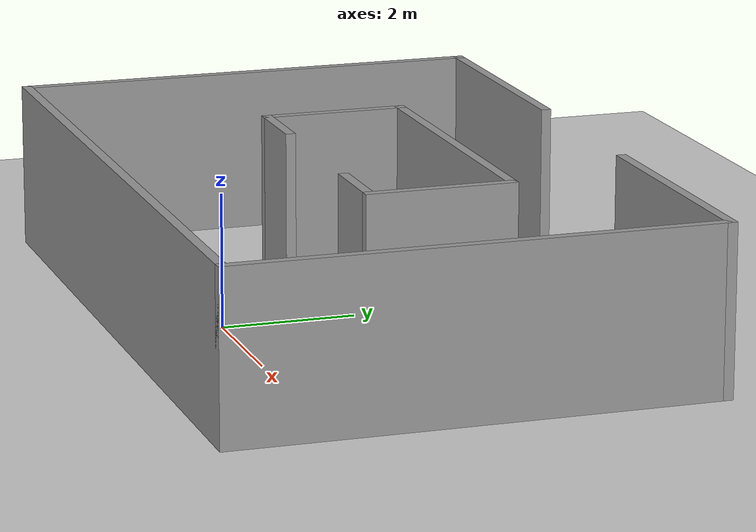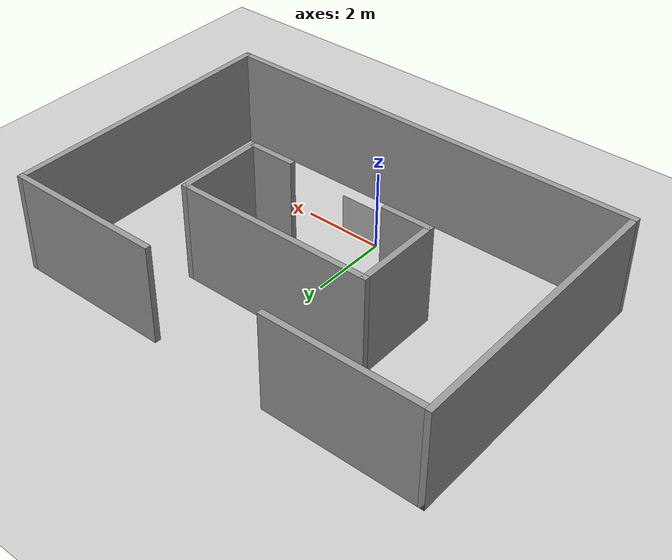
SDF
<sdf version="1.6">
 <world name="default">
  <light name="sun" type="directional">
   <pose>0 0 10 0 -0 0</pose>
   <diffuse>0.8 0.8 0.8 1</diffuse>
   <specular>0.2 0.2 0.2 1</specular>
   <attenuation>
    <range>1000</range>
    <constant>0.9</constant>
    <linear>0.01</linear>
    <quadratic>0.001</quadratic>
   </attenuation>
   <direction>-0.5 0.1 -0.9</direction>
  </light>
  <model name="painting1">
   <static>true</static>
   <link name="link">
    <pose>0.5 0 0.5 0 0 0</pose>
    <visual name="visual">
     <geometry><box><size>1 0.001 1</size></box></geometry>
     <material>
      <script>
       <uri>/home/rocotics/ros2_ws/src/robot_ml/models/painting/materials/scripts</uri>
       <uri>/home/rocotics/ros2_ws/src/robot_ml/models/painting/materials/textures</uri>
       <name>cats/1</name>
      </script>
     </material>
    </visual>
   </link>
  </model>
  <model name="painting2">
   <static>true</static>
   <link name="link">
    <pose>0.5 0 0.5 0 0 0</pose>
    <visual name="visual">
     <geometry><box><size>1 0.001 1</size></box></geometry>
     <material>
      <script>
       <uri>/home/rocotics/ros2_ws/src/robot_ml/models/painting/materials/scripts</uri>
       <uri>/home/rocotics/ros2_ws/src/robot_ml/models/painting/materials/textures</uri>
       <name>cats/2</name>
      </script>
     </material>
    </visual>
   </link>
  </model>
  <model name="painting3">
   <static>true</static>
   <link name="link">
    <pose>0.5 0 0.5 0 0 0</pose>
    <visual name="visual">
     <geometry><box><size>1 0.001 1</size></box></geometry>
     <material>
      <script>
       <uri>/home/rocotics/ros2_ws/src/robot_ml/models/painting/materials/scripts</uri>
       <uri>/home/rocotics/ros2_ws/src/robot_ml/models/painting/materials/textures</uri>
       <name>dogs/1</name>
      </script>
     </material>
    </visual>
   </link>
  </model>
  <model name="painting4">
   <static>true</static>
   <link name="link">
    <pose>0.5 0 0.5 0 0 0</pose>
    <visual name="visual">
     <geometry><box><size>1 0.001 1</size></box></geometry>
     <material>
      <script>
       <uri>/home/rocotics/ros2_ws/src/robot_ml/models/painting/materials/scripts</uri>
       <uri>/home/rocotics/ros2_ws/src/robot_ml/models/painting/materials/textures</uri>
       <name>dogs/2</name>
      </script>
     </material>
    </visual>
   </link>
  </model>
  <model name="painting5">
   <static>true</static>
   <link name="link">
    <pose>0.5 0 0.5 0 0 0</pose>
    <visual name="visual">
     <geometry><box><size>1 0.001 1</size></box></geometry>
     <material>
      <script>
       <uri>/home/rocotics/ros2_ws/src/robot_ml/models/painting/materials/scripts</uri>
       <uri>/home/rocotics/ros2_ws/src/robot_ml/models/painting/materials/textures</uri>
       <name>cats/1</name>
      </script>
     </material>
    </visual>
   </link>
  </model>
  <model name="painting6">
   <static>true</static>
   <link name="link">
    <pose>0.5 0 0.5 0 0 0</pose>
    <visual name="visual">
     <geometry><box><size>1 0.001 1</size></box></geometry>
     <material>
      <script>
       <uri>/home/rocotics/ros2_ws/src/robot_ml/models/painting/materials/scripts</uri>
       <uri>/home/rocotics/ros2_ws/src/robot_ml/models/painting/materials/textures</uri>
       <name>cats/2</name>
      </script>
     </material>
    </visual>
   </link>
  </model>
  <model name="painting7">
   <static>true</static>
   <link name="link">
    <pose>0.5 0 0.5 0 0 0</pose>
    <visual name="visual">
     <geometry><box><size>1 0.001 1</size></box></geometry>
     <material>
      <script>
       <uri>/home/rocotics/ros2_ws/src/robot_ml/models/painting/materials/scripts</uri>
       <uri>/home/rocotics/ros2_ws/src/robot_ml/models/painting/materials/textures</uri>
       <name>dogs/1</name>
      </script>
     </material>
    </visual>
   </link>
  </model>
  <model name="painting8">
   <static>true</static>
   <link name="link">
    <pose>0.5 0 0.5 0 0 0</pose>
    <visual name="visual">
     <geometry><box><size>1 0.001 1</size></box></geometry>
     <material>
      <script>
       <uri>/home/rocotics/ros2_ws/src/robot_ml/models/painting/materials/scripts</uri>
       <uri>/home/rocotics/ros2_ws/src/robot_ml/models/painting/materials/textures</uri>
       <name>dogs/2</name>
      </script>
     </material>
    </visual>
   </link>
  </model>
  <model name="ground_plane">
   <static>1</static>
   <link name="link">
    <collision name="collision">
     <geometry><plane><normal>0 0 1</normal><size>100 100</size></plane></geometry>
     <surface><friction><ode><mu>100</mu><mu2>50</mu2></ode></friction></surface>
    </collision>
    <visual name="visual">
     <cast_shadows>0</cast_shadows>
     <geometry><plane><normal>0 0 1</normal><size>100 100</size></plane></geometry>
     <material>
      <script><uri>file://media/materials/scripts/gazebo.material</uri><name>Gazebo/Grey</name></script>
     </material>
    </visual>
   </link>
  </model>
  <gravity>0 0 -9.8</gravity>
  <magnetic_field>6e-06 2.3e-05 -4.2e-05</magnetic_field>
  <atmosphere type="adiabatic"/>
  <physics name="default_physics" default="0" type="ode">
   <max_step_size>0.001</max_step_size>
   <real_time_factor>1</real_time_factor>
   <real_time_update_rate>1000</real_time_update_rate>
  </physics>
  <scene><ambient>0.4 0.4 0.4 1</ambient><background>0.7 0.7 0.7 1</background><shadows>1</shadows></scene>
  <audio><device>default</device></audio>
  <spherical_coordinates>
   <surface_model>EARTH_WGS84</surface_model>
   <latitude_deg>0</latitude_deg>
   <longitude_deg>0</longitude_deg>
   <elevation>0</elevation>
   <heading_deg>0</heading_deg>
  </spherical_coordinates>
  <model name="bug_2_walls">
   <pose>-0.026913 2.00588 0 0 -0 0</pose>
   <link name="Wall_0">
    <collision name="Wall_0_Collision">
     <geometry><box><size>1.25 0.15 2.5</size></box></geometry>
     <pose>0 0 1.25 0 -0 0</pose>
    </collision>
    <visual name="Wall_0_Visual">
     <pose>0 0 1.25 0 -0 0</pose>
     <geometry><box><size>1.25 0.15 2.5</size></box></geometry>
     <material>
      <script><uri>file://media/materials/scripts/gazebo.material</uri><name>Gazebo/Grey</name></script>
      <ambient>1 1 1 1</ambient>
     </material>
     <meta><layer>0</layer></meta>
    </visual>
    <pose>1.93051 -0.583605 0 0 -0 0</pose>
   </link>
   <link name="Wall_10">
    <collision name="Wall_10_Collision">
     <geometry><box><size>7.25 0.15 2.5</size></box></geometry>
     <pose>0 0 1.25 0 -0 0</pose>
    </collision>
    <visual name="Wall_10_Visual">
     <pose>0 0 1.25 0 -0 0</pose>
     <geometry><box><size>7.25 0.15 2.5</size></box></geometry>
     <material>
      <script><uri>file://media/materials/scripts/gazebo.material</uri><name>Gazebo/Grey</name></script>
      <ambient>1 1 1 1</ambient>
     </material>
     <meta><layer>0</layer></meta>
    </visual>
    <pose>5.425 0 0 0 -0 1.5708</pose>
   </link>
   <link name="Wall_12">
    <collision name="Wall_12_Collision">
     <geometry><box><size>7.25 0.15 2.5</size></box></geometry>
     <pose>0 0 1.25 0 -0 0</pose>
    </collision>
    <visual name="Wall_12_Visual">
     <pose>0 0 1.25 0 -0 0</pose>
     <geometry><box><size>7.25 0.15 2.5</size></box></geometry>
     <material>
      <script><uri>file://media/materials/scripts/gazebo.material</uri><name>Gazebo/Grey</name></script>
      <ambient>1 1 1 1</ambient>
     </material>
     <meta><layer>0</layer></meta>
    </visual>
    <pose>-5.425 0 0 0 -0 1.5708</pose>
   </link>
   <link name="Wall_13">
    <collision name="Wall_13_Collision">
     <geometry><box><size>4 0.15 2.5</size></box></geometry>
     <pose>0 0 1.25 0 -0 0</pose>
    </collision>
    <visual name="Wall_13_Visual">
     <pose>0 0 1.25 0 -0 0</pose>
     <geometry><box><size>4 0.15 2.5</size></box></geometry>
     <material>
      <script><uri>file://media/materials/scripts/gazebo.material</uri><name>Gazebo/Grey</name></script>
      <ambient>1 1 1 1</ambient>
     </material>
     <meta><layer>0</layer></meta>
    </visual>
    <pose>-3.5 3.55 0 0 -0 0</pose>
   </link>
   <link name="Wall_15">
    <collision name="Wall_15_Collision">
     <geometry><box><size>4 0.15 2.5</size></box></geometry>
     <pose>0 0 1.25 0 -0 0</pose>
    </collision>
    <visual name="Wall_15_Visual">
     <pose>0 0 1.25 0 -0 0</pose>
     <geometry><box><size>4 0.15 2.5</size></box></geometry>
     <material>
      <script><uri>file://media/materials/scripts/gazebo.material</uri><name>Gazebo/Grey</name></script>
      <ambient>1 1 1 1</ambient>
     </material>
     <meta><layer>0</layer></meta>
    </visual>
    <pose>3.5 3.55 0 0 -0 3.14159</pose>
   </link>
   <link name="Wall_2">
    <collision name="Wall_2_Collision">
     <geometry><box><size>2.25 0.15 2.5</size></box></geometry>
     <pose>0 0 1.25 0 -0 0</pose>
    </collision>
    <visual name="Wall_2_Visual">
     <pose>0 0 1.25 0 -0 0</pose>
     <geometry><box><size>2.25 0.15 2.5</size></box></geometry>
     <material>
      <script><uri>file://media/materials/scripts/gazebo.material</uri><name>Gazebo/Grey</name></script>
      <ambient>1 1 1 1</ambient>
     </material>
     <meta><layer>0</layer></meta>
    </visual>
    <pose>2.48051 0.466395 0 0 -0 1.5708</pose>
   </link>
   <link name="Wall_3">
    <collision name="Wall_3_Collision">
     <geometry><box><size>5 0.15 2.5</size></box></geometry>
     <pose>0 0 1.25 0 -0 0</pose>
    </collision>
    <visual name="Wall_3_Visual">
     <pose>0 0 1.25 0 -0 0</pose>
     <geometry><box><size>5 0.15 2.5</size></box></geometry>
     <material>
      <script><uri>file://media/materials/scripts/gazebo.material</uri><name>Gazebo/Grey</name></script>
      <ambient>1 1 1 1</ambient>
     </material>
     <meta><layer>0</layer></meta>
    </visual>
    <pose>0.051752 1.51639 0 0 -0 3.14159</pose>
   </link>
   <link name="Wall_4">
    <collision name="Wall_4_Collision">
     <geometry><box><size>2.25 0.15 2.5</size></box></geometry>
     <pose>0 0 1.25 0 -0 0</pose>
    </collision>
    <visual name="Wall_4_Visual">
     <pose>0 0 1.25 0 -0 0</pose>
     <geometry><box><size>2.25 0.15 2.5</size></box></geometry>
     <material>
      <script><uri>file://media/materials/scripts/gazebo.material</uri><name>Gazebo/Grey</name></script>
      <ambient>1 1 1 1</ambient>
     </material>
     <meta><layer>0</layer></meta>
    </visual>
    <pose>-2.37325 0.466395 0 0 -0 -1.5708</pose>
   </link>
   <link name="Wall_6">
    <collision name="Wall_6_Collision">
     <geometry><box><size>1.25 0.15 2.5</size></box></geometry>
     <pose>0 0 1.25 0 -0 0</pose>
    </collision>
    <visual name="Wall_6_Visual">
     <pose>0 0 1.25 0 -0 0</pose>
     <geometry><box><size>1.25 0.15 2.5</size></box></geometry>
     <material>
      <script><uri>file://media/materials/scripts/gazebo.material</uri><name>Gazebo/Grey</name></script>
      <ambient>1 1 1 1</ambient>
     </material>
     <meta><layer>0</layer></meta>
    </visual>
    <pose>-1.82325 -0.583605 0 0 -0 3.14159</pose>
   </link>
   <link name="Wall_8">
    <collision name="Wall_8_Collision">
     <geometry><box><size>11 0.15 2.5</size></box></geometry>
     <pose>0 0 1.25 0 -0 0</pose>
    </collision>
    <visual name="Wall_8_Visual">
     <pose>0 0 1.25 0 -0 0</pose>
     <geometry><box><size>11 0.15 2.5</size></box></geometry>
     <material>
      <script><uri>file://media/materials/scripts/gazebo.material</uri><name>Gazebo/Grey</name></script>
      <ambient>1 1 1 1</ambient>
     </material>
     <meta><layer>0</layer></meta>
    </visual>
    <pose>-0 -3.55 0 0 -0 0</pose>
   </link>
   <static>1</static>
  </model>
 </world>
</sdf>
